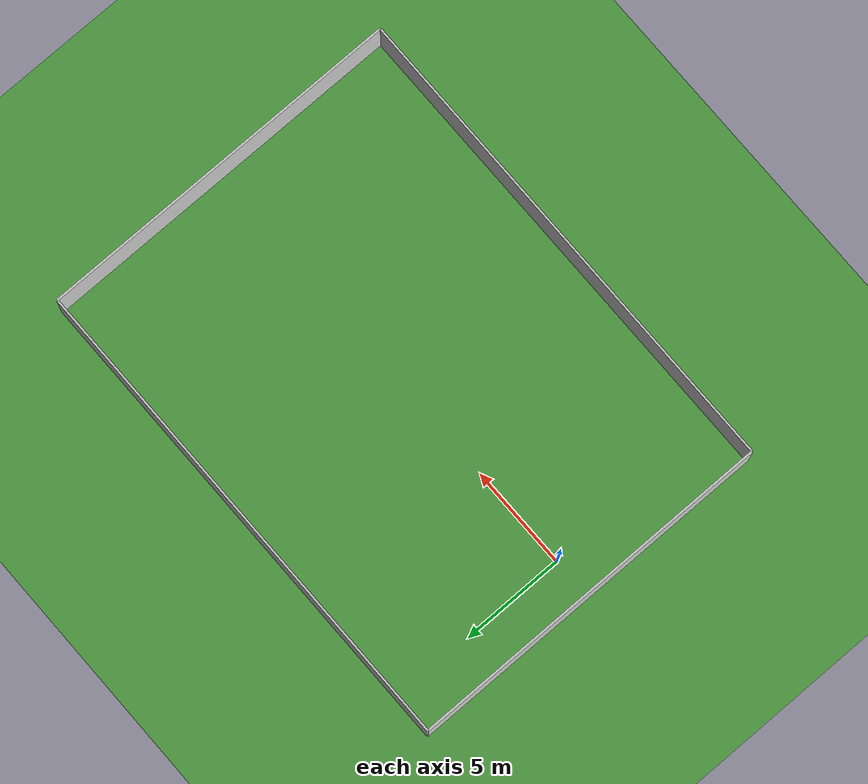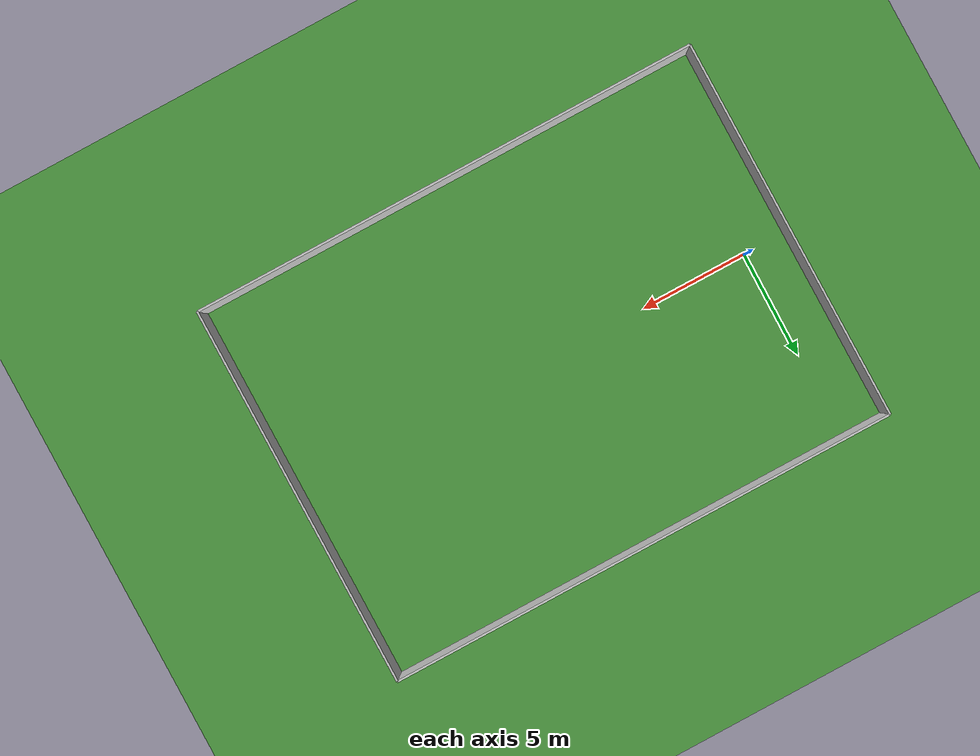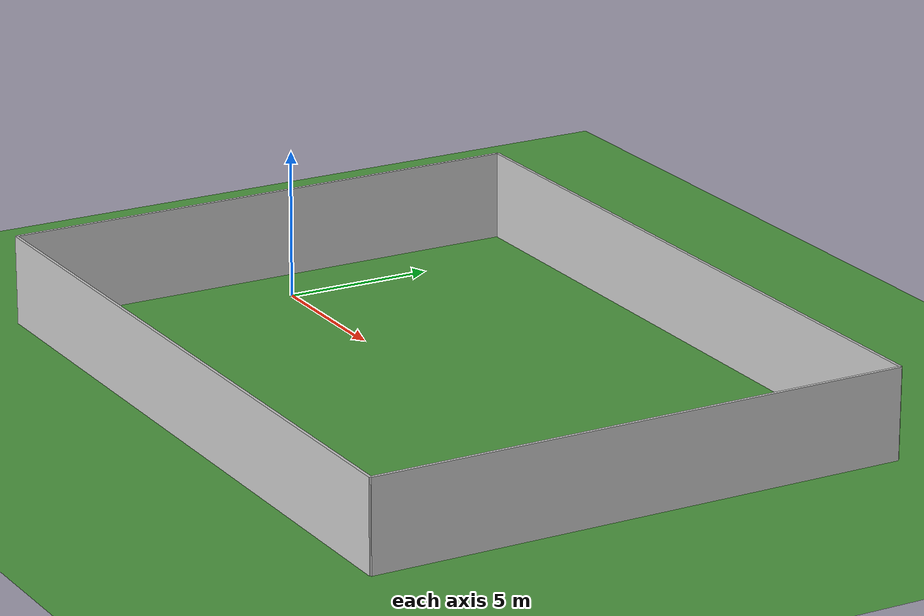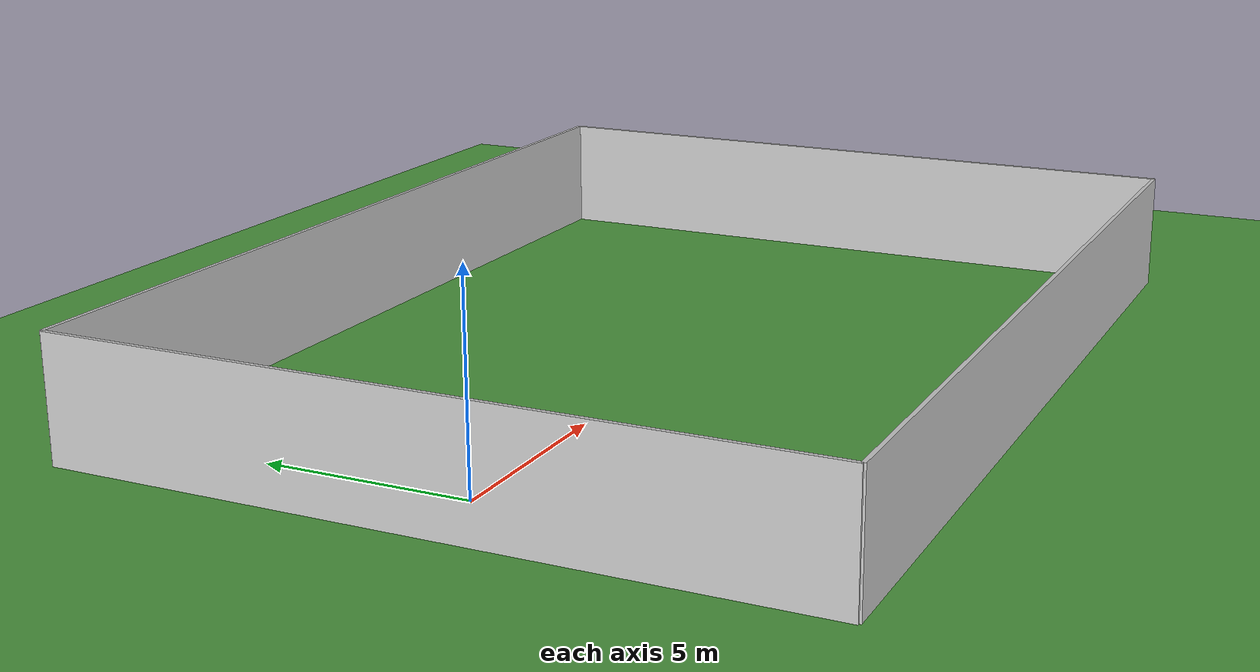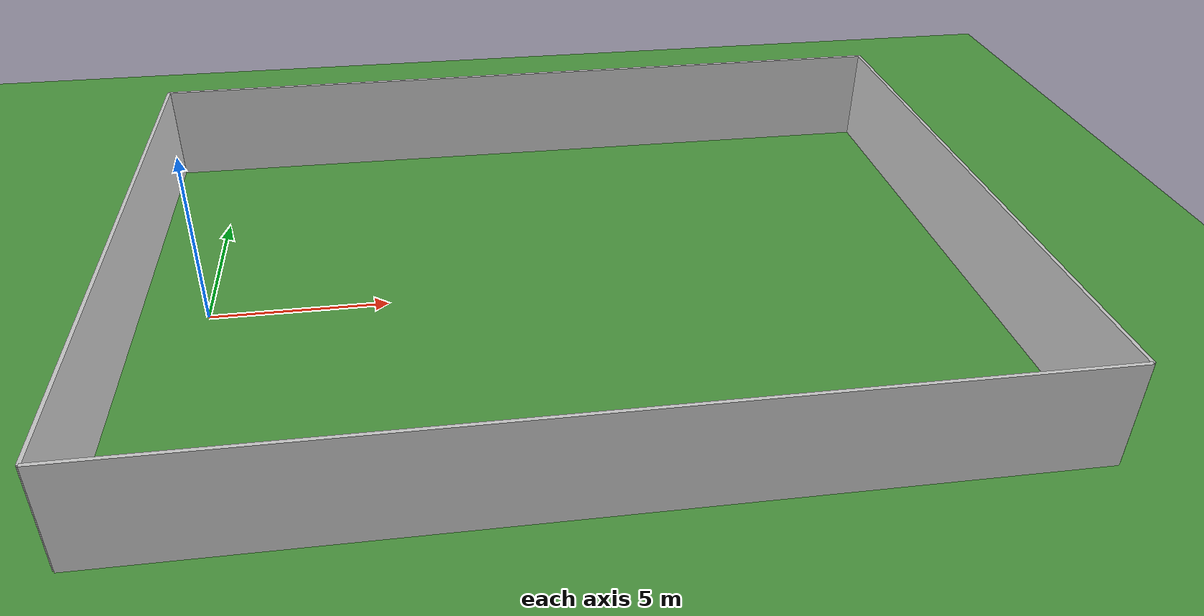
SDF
<sdf version="1.7">
 <world name="grass_enclosed_world">
  <light name="sun" type="directional">
   <pose>0 0 10 0 -0 0</pose>
   <diffuse>0.8 0.8 0.8 1</diffuse>
   <specular>0.2 0.2 0.2 1</specular>
   <attenuation>
    <range>1000</range>
    <constant>0.9</constant>
    <linear>0.01</linear>
    <quadratic>0.001</quadratic>
   </attenuation>
   <direction>-0.5 0.1 -0.9</direction>
   <spot><inner_angle>0</inner_angle><outer_angle>0</outer_angle><falloff>0</falloff></spot>
  </light>
  <model name="ground_plane">
   <static>1</static>
   <link name="link">
    <collision name="collision">
     <geometry><plane><normal>0 0 1</normal><size>50 50</size></plane></geometry>
     <surface><friction><ode><mu>100</mu><mu2>50</mu2></ode></friction></surface>
    </collision>
    <visual name="visual">
     <geometry><plane><normal>0 0 1</normal><size>50 50</size></plane></geometry>
     <material>
      <script><uri>file://media/materials/scripts/gazebo.material</uri><name>Gazebo/Grass</name></script>
     </material>
    </visual>
   </link>
  </model>
  <model name="wall_x_positive">
   <static>1</static>
   <pose>10 9 1.5 0 -0 0</pose>
   <link name="link">
    <collision name="collision"><geometry><box><size>24 0.1 3</size></box></geometry></collision>
    <visual name="visual">
     <geometry><box><size>24 0.1 3</size></box></geometry>
     <material><ambient>0.8 0.8 0.8 1</ambient></material>
    </visual>
   </link>
  </model>
  <model name="wall_x_negative">
   <static>1</static>
   <pose>10 -9 1.5 0 -0 0</pose>
   <link name="link">
    <collision name="collision"><geometry><box><size>24 0.1 3</size></box></geometry></collision>
    <visual name="visual">
     <geometry><box><size>24 0.1 3</size></box></geometry>
     <material><ambient>0.8 0.8 0.8 1</ambient></material>
    </visual>
   </link>
  </model>
  <model name="wall_y_positive">
   <static>1</static>
   <pose>22 0 1.5 0 -0 0</pose>
   <link name="link">
    <collision name="collision"><geometry><box><size>0.1 18 3</size></box></geometry></collision>
    <visual name="visual">
     <geometry><box><size>0.1 18 3</size></box></geometry>
     <material><ambient>0.8 0.8 0.8 1</ambient></material>
    </visual>
   </link>
  </model>
  <model name="wall_y_negative">
   <static>1</static>
   <pose>-2 0 1.5 0 -0 0</pose>
   <link name="link">
    <collision name="collision"><geometry><box><size>0.1 18 3</size></box></geometry></collision>
    <visual name="visual">
     <geometry><box><size>0.1 18 3</size></box></geometry>
     <material><ambient>0.8 0.8 0.8 1</ambient></material>
    </visual>
   </link>
  </model>
  <model name="oak_tree">
   <pose>6.13621 -4.17728 -894967 0 -0 0</pose>
   <link name="link">
    <pose>6.13621 -4.17728 0 0 -0 0</pose>
    <inertial>
     <inertia><ixx>1</ixx><ixy>0</ixy><ixz>0</ixz><iyy>1</iyy><iyz>0</iyz><izz>1</izz></inertia>
     <mass>1</mass>
    </inertial>
    <velocity>0 0 0 0 -0 0</velocity>
    <acceleration>0 0 0 0 -0 0</acceleration>
    <wrench>0 0 0 0 -0 0</wrench>
   </link>
   <scale>1 1 1</scale>
  </model>
  <model name="pine_tree">
   <pose>3.69007 2.61013 -894967 0 -0 0</pose>
   <link name="link">
    <pose>3.69007 2.61013 0 0 -0 0</pose>
    <inertial>
     <inertia><ixx>1</ixx><ixy>0</ixy><ixz>0</ixz><iyy>1</iyy><iyz>0</iyz><izz>1</izz></inertia>
     <mass>1</mass>
    </inertial>
    <velocity>0 0 0 0 -0 0</velocity>
    <acceleration>0 0 0 0 -0 0</acceleration>
    <wrench>0 0 0 0 -0 0</wrench>
   </link>
   <scale>1 1 1</scale>
  </model>
  <model name="pine_tree_0">
   <pose>5.15015 5.3415 -894967 0 -0 0</pose>
   <link name="link">
    <pose>5.15015 5.3415 0 0 -0 0</pose>
    <inertial>
     <inertia><ixx>1</ixx><ixy>0</ixy><ixz>0</ixz><iyy>1</iyy><iyz>0</iyz><izz>1</izz></inertia>
     <mass>1</mass>
    </inertial>
    <velocity>0 0 0 0 -0 0</velocity>
    <acceleration>0 0 0 0 -0 0</acceleration>
    <wrench>0 0 0 0 -0 0</wrench>
   </link>
   <scale>1 1 1</scale>
  </model>
  <model name="pine_tree_1">
   <pose>8.01586 3.60971 -894967 0 -0 0</pose>
   <link name="link">
    <pose>8.01586 3.60971 0 0 -0 0</pose>
    <inertial>
     <inertia><ixx>1</ixx><ixy>0</ixy><ixz>0</ixz><iyy>1</iyy><iyz>0</iyz><izz>1</izz></inertia>
     <mass>1</mass>
    </inertial>
    <velocity>0 0 0 0 -0 0</velocity>
    <acceleration>0 0 0 0 -0 0</acceleration>
    <wrench>0 0 0 0 -0 0</wrench>
   </link>
   <scale>1 1 1</scale>
  </model>
  <model name="pine_tree_2">
   <pose>9.61175 6.59909 -894967 0 -0 0</pose>
   <link name="link">
    <pose>9.61175 6.59909 0 0 -0 0</pose>
    <inertial>
     <inertia><ixx>1</ixx><ixy>0</ixy><ixz>0</ixz><iyy>1</iyy><iyz>0</iyz><izz>1</izz></inertia>
     <mass>1</mass>
    </inertial>
    <velocity>0 0 0 0 -0 0</velocity>
    <acceleration>0 0 0 0 -0 0</acceleration>
    <wrench>0 0 0 0 -0 0</wrench>
   </link>
   <scale>1 1 1</scale>
  </model>
  <model name="pine_tree_3">
   <pose>10.2263 0.508349 -894967 0 -0 0</pose>
   <link name="link">
    <pose>10.2263 0.508349 0 0 -0 0</pose>
    <inertial>
     <inertia><ixx>1</ixx><ixy>0</ixy><ixz>0</ixz><iyy>1</iyy><iyz>0</iyz><izz>1</izz></inertia>
     <mass>1</mass>
    </inertial>
    <velocity>0 0 0 0 -0 0</velocity>
    <acceleration>0 0 0 0 -0 0</acceleration>
    <wrench>0 0 0 0 -0 0</wrench>
   </link>
   <scale>1 1 1</scale>
  </model>
  <model name="pine_tree_4">
   <pose>12.4557 3.75801 -894967 0 -0 0</pose>
   <link name="link">
    <pose>12.4557 3.75801 0 0 -0 0</pose>
    <inertial>
     <inertia><ixx>1</ixx><ixy>0</ixy><ixz>0</ixz><iyy>1</iyy><iyz>0</iyz><izz>1</izz></inertia>
     <mass>1</mass>
    </inertial>
    <velocity>0 0 0 0 -0 0</velocity>
    <acceleration>0 0 0 0 -0 0</acceleration>
    <wrench>0 0 0 0 -0 0</wrench>
   </link>
   <scale>1 1 1</scale>
  </model>
  <model name="pine_tree_5">
   <pose>16.6246 3.93043 -894967 0 -0 0</pose>
   <link name="link">
    <pose>16.6246 3.93043 0 0 -0 0</pose>
    <inertial>
     <inertia><ixx>1</ixx><ixy>0</ixy><ixz>0</ixz><iyy>1</iyy><iyz>0</iyz><izz>1</izz></inertia>
     <mass>1</mass>
    </inertial>
    <velocity>0 0 0 0 -0 0</velocity>
    <acceleration>0 0 0 0 -0 0</acceleration>
    <wrench>0 0 0 0 -0 0</wrench>
   </link>
   <scale>1 1 1</scale>
  </model>
  <model name="thrift_shop">
   <pose>16.4126 -2.7605 -894967 0 -0 0</pose>
   <link name="link">
    <pose>16.4126 -2.7605 0 0 -0 0</pose>
    <inertial>
     <inertia><ixx>1</ixx><ixy>0</ixy><ixz>0</ixz><iyy>1</iyy><iyz>0</iyz><izz>1</izz></inertia>
     <mass>1</mass>
    </inertial>
    <velocity>0 0 0 0 -0 0</velocity>
    <acceleration>0 0 0 0 -0 0</acceleration>
    <wrench>0 0 0 0 -0 0</wrench>
   </link>
   <scale>1 1 1</scale>
  </model>
  <physics type="ode">
   <max_step_size>0.001</max_step_size>
   <real_time_factor>1</real_time_factor>
   <real_time_update_rate>1000</real_time_update_rate>
   <gravity>0 0 -9.8</gravity>
  </physics>
  <gravity>0 0 -9.8</gravity>
  <magnetic_field>6e-06 2.3e-05 -4.2e-05</magnetic_field>
  <atmosphere type="adiabatic"/>
  <scene><ambient>0.4 0.4 0.4 1</ambient><background>0.7 0.7 0.7 1</background><shadows>1</shadows></scene>
  <spherical_coordinates>
   <surface_model>EARTH_WGS84</surface_model>
   <latitude_deg>0</latitude_deg>
   <longitude_deg>0</longitude_deg>
   <elevation>0</elevation>
   <heading_deg>0</heading_deg>
  </spherical_coordinates>
 </world>
</sdf>
